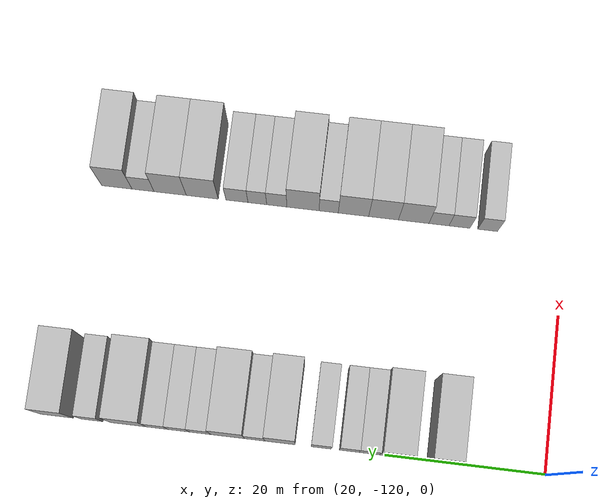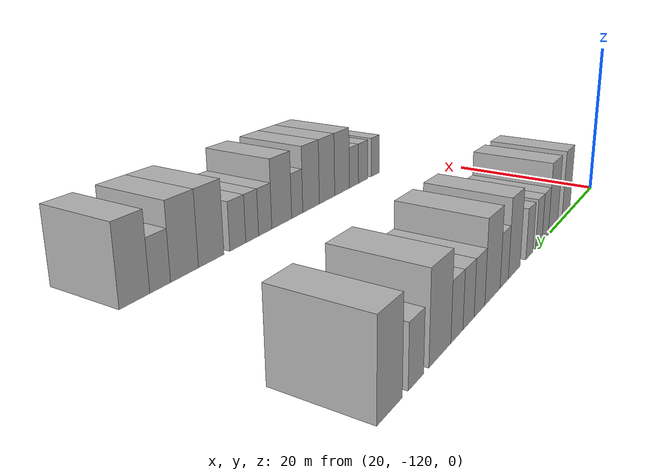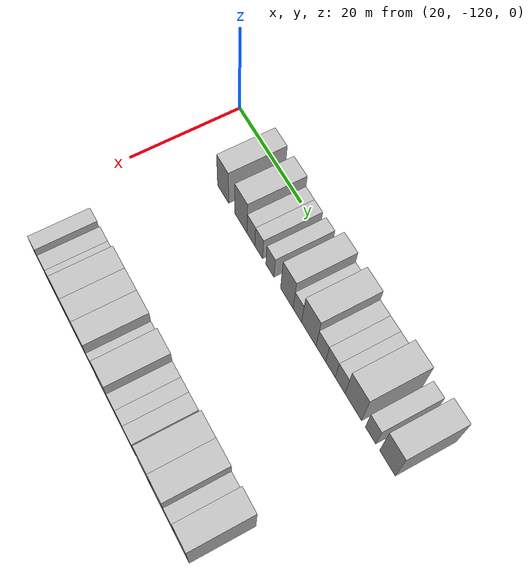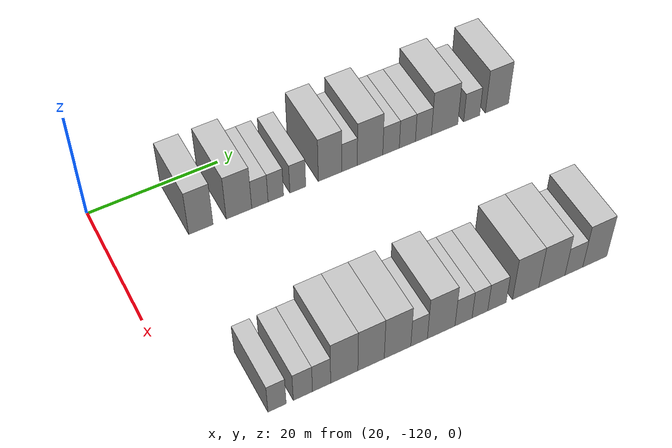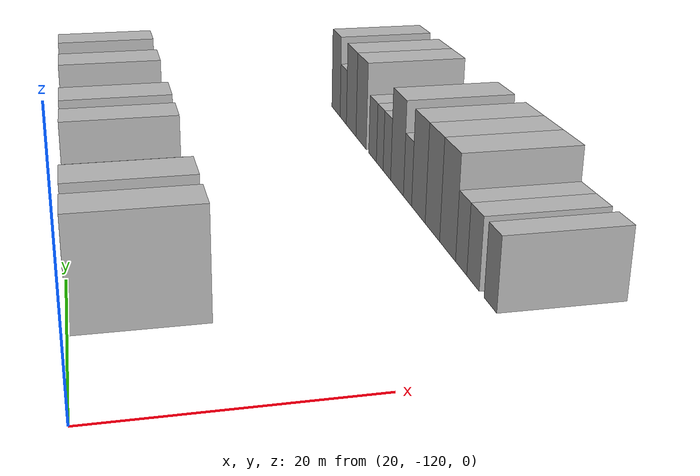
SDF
<sdf version="1.6">
 <world name="default">
  <model name="building_30">
   <static>1</static>
   <pose>25.0000 -107.0710 0 0.000000 0.000000 0.000000</pose>
   <link name="link">
    <pose>0 0 4.50 0 0 0</pose>
    <collision name="collision"><geometry><box><size>10.0000 3.6937 9.0000</size></box></geometry></collision>
    <visual name="visual">
     <cast_shadows>0</cast_shadows>
     <geometry><box><size>10.0000 3.6937 9.0000</size></box></geometry>
     <material>
      <script>
       <uri>model://HANNAS_wall/materials/scripts</uri>
       <uri>model://HANNAS_wall/materials/textures</uri>
       <name>vrc/HANNAS_wall</name>
      </script>
     </material>
    </visual>
   </link>
  </model>
  <model name="building_31">
   <static>1</static>
   <pose>25.0000 -101.2576 0 0.000000 0.000000 0.000000</pose>
   <link name="link">
    <pose>0 0 4.50 0 0 0</pose>
    <collision name="collision"><geometry><box><size>10.0000 3.9331 9.0000</size></box></geometry></collision>
    <visual name="visual">
     <cast_shadows>0</cast_shadows>
     <geometry><box><size>10.0000 3.9331 9.0000</size></box></geometry>
     <material>
      <script>
       <uri>model://HANNAS_wall/materials/scripts</uri>
       <uri>model://HANNAS_wall/materials/textures</uri>
       <name>vrc/HANNAS_wall</name>
      </script>
     </material>
    </visual>
   </link>
  </model>
  <model name="building_32">
   <static>1</static>
   <pose>25.0000 -98.0210 0 0.000000 0.000000 0.000000</pose>
   <link name="link">
    <pose>0 0 3.00 0 0 0</pose>
    <collision name="collision"><geometry><box><size>10.0000 2.5402 6.0000</size></box></geometry></collision>
    <visual name="visual">
     <cast_shadows>0</cast_shadows>
     <geometry><box><size>10.0000 2.5402 6.0000</size></box></geometry>
     <material>
      <script>
       <uri>model://HANNAS_wall/materials/scripts</uri>
       <uri>model://HANNAS_wall/materials/textures</uri>
       <name>vrc/HANNAS_wall</name>
      </script>
     </material>
    </visual>
   </link>
  </model>
  <model name="building_33">
   <static>1</static>
   <pose>25.0000 -95.5394 0 0.000000 0.000000 0.000000</pose>
   <link name="link">
    <pose>0 0 3.00 0 0 0</pose>
    <collision name="collision"><geometry><box><size>10.0000 2.4229 6.0000</size></box></geometry></collision>
    <visual name="visual">
     <cast_shadows>0</cast_shadows>
     <geometry><box><size>10.0000 2.4229 6.0000</size></box></geometry>
     <material>
      <script>
       <uri>model://HANNAS_wall/materials/scripts</uri>
       <uri>model://HANNAS_wall/materials/textures</uri>
       <name>vrc/HANNAS_wall</name>
      </script>
     </material>
    </visual>
   </link>
  </model>
  <model name="building_34">
   <static>1</static>
   <pose>25.0000 -92.0725 0 0.000000 0.000000 0.000000</pose>
   <link name="link">
    <pose>0 0 3.00 0 0 0</pose>
    <collision name="collision"><geometry><box><size>10.0000 2.5108 6.0000</size></box></geometry></collision>
    <visual name="visual">
     <cast_shadows>0</cast_shadows>
     <geometry><box><size>10.0000 2.5108 6.0000</size></box></geometry>
     <material>
      <script>
       <uri>model://HANNAS_wall/materials/scripts</uri>
       <uri>model://HANNAS_wall/materials/textures</uri>
       <name>vrc/HANNAS_wall</name>
      </script>
     </material>
    </visual>
   </link>
  </model>
  <model name="building_35">
   <static>1</static>
   <pose>25.0000 -86.9352 0 0.000000 0.000000 0.000000</pose>
   <link name="link">
    <pose>0 0 4.50 0 0 0</pose>
    <collision name="collision"><geometry><box><size>10.0000 3.7638 9.0000</size></box></geometry></collision>
    <visual name="visual">
     <cast_shadows>0</cast_shadows>
     <geometry><box><size>10.0000 3.7638 9.0000</size></box></geometry>
     <material>
      <script>
       <uri>model://HANNAS_wall/materials/scripts</uri>
       <uri>model://HANNAS_wall/materials/textures</uri>
       <name>vrc/HANNAS_wall</name>
      </script>
     </material>
    </visual>
   </link>
  </model>
  <model name="building_36">
   <static>1</static>
   <pose>25.0000 -83.7981 0 0.000000 0.000000 0.000000</pose>
   <link name="link">
    <pose>0 0 3.00 0 0 0</pose>
    <collision name="collision"><geometry><box><size>10.0000 2.5105 6.0000</size></box></geometry></collision>
    <visual name="visual">
     <cast_shadows>0</cast_shadows>
     <geometry><box><size>10.0000 2.5105 6.0000</size></box></geometry>
     <material>
      <script>
       <uri>model://HANNAS_wall/materials/scripts</uri>
       <uri>model://HANNAS_wall/materials/textures</uri>
       <name>vrc/HANNAS_wall</name>
      </script>
     </material>
    </visual>
   </link>
  </model>
  <model name="building_37">
   <static>1</static>
   <pose>25.0000 -80.4423 0 0.000000 0.000000 0.000000</pose>
   <link name="link">
    <pose>0 0 4.50 0 0 0</pose>
    <collision name="collision"><geometry><box><size>10.0000 4.2010 9.0000</size></box></geometry></collision>
    <visual name="visual">
     <cast_shadows>0</cast_shadows>
     <geometry><box><size>10.0000 4.2010 9.0000</size></box></geometry>
     <material>
      <script>
       <uri>model://HANNAS_wall/materials/scripts</uri>
       <uri>model://HANNAS_wall/materials/textures</uri>
       <name>vrc/HANNAS_wall</name>
      </script>
     </material>
    </visual>
   </link>
  </model>
  <model name="building_38">
   <static>1</static>
   <pose>25.0000 -76.9729 0 0.000000 0.000000 0.000000</pose>
   <link name="link">
    <pose>0 0 3.00 0 0 0</pose>
    <collision name="collision"><geometry><box><size>10.0000 2.7378 6.0000</size></box></geometry></collision>
    <visual name="visual">
     <cast_shadows>0</cast_shadows>
     <geometry><box><size>10.0000 2.7378 6.0000</size></box></geometry>
     <material>
      <script>
       <uri>model://HANNAS_wall/materials/scripts</uri>
       <uri>model://HANNAS_wall/materials/textures</uri>
       <name>vrc/HANNAS_wall</name>
      </script>
     </material>
    </visual>
   </link>
  </model>
  <model name="building_39">
   <static>1</static>
   <pose>25.0000 -74.2615 0 0.000000 0.000000 0.000000</pose>
   <link name="link">
    <pose>0 0 3.00 0 0 0</pose>
    <collision name="collision"><geometry><box><size>10.0000 2.6850 6.0000</size></box></geometry></collision>
    <visual name="visual">
     <cast_shadows>0</cast_shadows>
     <geometry><box><size>10.0000 2.6850 6.0000</size></box></geometry>
     <material>
      <script>
       <uri>model://HANNAS_wall/materials/scripts</uri>
       <uri>model://HANNAS_wall/materials/textures</uri>
       <name>vrc/HANNAS_wall</name>
      </script>
     </material>
    </visual>
   </link>
  </model>
  <model name="building_40">
   <static>1</static>
   <pose>25.0000 -71.5659 0 0.000000 0.000000 0.000000</pose>
   <link name="link">
    <pose>0 0 3.00 0 0 0</pose>
    <collision name="collision"><geometry><box><size>10.0000 2.7063 6.0000</size></box></geometry></collision>
    <visual name="visual">
     <cast_shadows>0</cast_shadows>
     <geometry><box><size>10.0000 2.7063 6.0000</size></box></geometry>
     <material>
      <script>
       <uri>model://HANNAS_wall/materials/scripts</uri>
       <uri>model://HANNAS_wall/materials/textures</uri>
       <name>vrc/HANNAS_wall</name>
      </script>
     </material>
    </visual>
   </link>
  </model>
  <model name="building_41">
   <static>1</static>
   <pose>25.0000 -67.9681 0 0.000000 0.000000 0.000000</pose>
   <link name="link">
    <pose>0 0 4.50 0 0 0</pose>
    <collision name="collision"><geometry><box><size>10.0000 4.4892 9.0000</size></box></geometry></collision>
    <visual name="visual">
     <cast_shadows>0</cast_shadows>
     <geometry><box><size>10.0000 4.4892 9.0000</size></box></geometry>
     <material>
      <script>
       <uri>model://HANNAS_wall/materials/scripts</uri>
       <uri>model://HANNAS_wall/materials/textures</uri>
       <name>vrc/HANNAS_wall</name>
      </script>
     </material>
    </visual>
   </link>
  </model>
  <model name="building_42">
   <static>1</static>
   <pose>25.0000 -63.3430 0 0.000000 0.000000 0.000000</pose>
   <link name="link">
    <pose>0 0 3.00 0 0 0</pose>
    <collision name="collision"><geometry><box><size>10.0000 2.7610 6.0000</size></box></geometry></collision>
    <visual name="visual">
     <cast_shadows>0</cast_shadows>
     <geometry><box><size>10.0000 2.7610 6.0000</size></box></geometry>
     <material>
      <script>
       <uri>model://HANNAS_wall/materials/scripts</uri>
       <uri>model://HANNAS_wall/materials/textures</uri>
       <name>vrc/HANNAS_wall</name>
      </script>
     </material>
    </visual>
   </link>
  </model>
  <model name="building_43">
   <static>1</static>
   <pose>25.0000 -58.9447 0 0.000000 0.000000 0.000000</pose>
   <link name="link">
    <pose>0 0 4.50 0 0 0</pose>
    <collision name="collision"><geometry><box><size>10.0000 4.0356 9.0000</size></box></geometry></collision>
    <visual name="visual">
     <cast_shadows>0</cast_shadows>
     <geometry><box><size>10.0000 4.0356 9.0000</size></box></geometry>
     <material>
      <script>
       <uri>model://HANNAS_wall/materials/scripts</uri>
       <uri>model://HANNAS_wall/materials/textures</uri>
       <name>vrc/HANNAS_wall</name>
      </script>
     </material>
    </visual>
   </link>
  </model>
  <model name="building_145">
   <static>1</static>
   <pose>55.0000 -110.0543 0 0.000000 0.000000 0.000000</pose>
   <link name="link">
    <pose>0 0 3.00 0 0 0</pose>
    <collision name="collision"><geometry><box><size>10.0000 2.5459 6.0000</size></box></geometry></collision>
    <visual name="visual">
     <cast_shadows>0</cast_shadows>
     <geometry><box><size>10.0000 2.5459 6.0000</size></box></geometry>
     <material>
      <script>
       <uri>model://HANNAS_wall/materials/scripts</uri>
       <uri>model://HANNAS_wall/materials/textures</uri>
       <name>vrc/HANNAS_wall</name>
      </script>
     </material>
    </visual>
   </link>
  </model>
  <model name="building_146">
   <static>1</static>
   <pose>55.0000 -106.4268 0 0.000000 0.000000 0.000000</pose>
   <link name="link">
    <pose>0 0 3.00 0 0 0</pose>
    <collision name="collision"><geometry><box><size>10.0000 2.7090 6.0000</size></box></geometry></collision>
    <visual name="visual">
     <cast_shadows>0</cast_shadows>
     <geometry><box><size>10.0000 2.7090 6.0000</size></box></geometry>
     <material>
      <script>
       <uri>model://HANNAS_wall/materials/scripts</uri>
       <uri>model://HANNAS_wall/materials/textures</uri>
       <name>vrc/HANNAS_wall</name>
      </script>
     </material>
    </visual>
   </link>
  </model>
  <model name="building_147">
   <static>1</static>
   <pose>55.0000 -103.7777 0 0.000000 0.000000 0.000000</pose>
   <link name="link">
    <pose>0 0 3.00 0 0 0</pose>
    <collision name="collision"><geometry><box><size>10.0000 2.5892 6.0000</size></box></geometry></collision>
    <visual name="visual">
     <cast_shadows>0</cast_shadows>
     <geometry><box><size>10.0000 2.5892 6.0000</size></box></geometry>
     <material>
      <script>
       <uri>model://HANNAS_wall/materials/scripts</uri>
       <uri>model://HANNAS_wall/materials/textures</uri>
       <name>vrc/HANNAS_wall</name>
      </script>
     </material>
    </visual>
   </link>
  </model>
  <model name="building_148">
   <static>1</static>
   <pose>55.0000 -100.5180 0 0.000000 0.000000 0.000000</pose>
   <link name="link">
    <pose>0 0 4.50 0 0 0</pose>
    <collision name="collision"><geometry><box><size>10.0000 3.9303 9.0000</size></box></geometry></collision>
    <visual name="visual">
     <cast_shadows>0</cast_shadows>
     <geometry><box><size>10.0000 3.9303 9.0000</size></box></geometry>
     <material>
      <script>
       <uri>model://HANNAS_wall/materials/scripts</uri>
       <uri>model://HANNAS_wall/materials/textures</uri>
       <name>vrc/HANNAS_wall</name>
      </script>
     </material>
    </visual>
   </link>
  </model>
  <model name="building_149">
   <static>1</static>
   <pose>55.0000 -96.6294 0 0.000000 0.000000 0.000000</pose>
   <link name="link">
    <pose>0 0 4.50 0 0 0</pose>
    <collision name="collision"><geometry><box><size>10.0000 3.8467 9.0000</size></box></geometry></collision>
    <visual name="visual">
     <cast_shadows>0</cast_shadows>
     <geometry><box><size>10.0000 3.8467 9.0000</size></box></geometry>
     <material>
      <script>
       <uri>model://HANNAS_wall/materials/scripts</uri>
       <uri>model://HANNAS_wall/materials/textures</uri>
       <name>vrc/HANNAS_wall</name>
      </script>
     </material>
    </visual>
   </link>
  </model>
  <model name="building_150">
   <static>1</static>
   <pose>55.0000 -92.7429 0 0.000000 0.000000 0.000000</pose>
   <link name="link">
    <pose>0 0 4.50 0 0 0</pose>
    <collision name="collision"><geometry><box><size>10.0000 3.9264 9.0000</size></box></geometry></collision>
    <visual name="visual">
     <cast_shadows>0</cast_shadows>
     <geometry><box><size>10.0000 3.9264 9.0000</size></box></geometry>
     <material>
      <script>
       <uri>model://HANNAS_wall/materials/scripts</uri>
       <uri>model://HANNAS_wall/materials/textures</uri>
       <name>vrc/HANNAS_wall</name>
      </script>
     </material>
    </visual>
   </link>
  </model>
  <model name="building_151">
   <static>1</static>
   <pose>55.0000 -89.5380 0 0.000000 0.000000 0.000000</pose>
   <link name="link">
    <pose>0 0 3.00 0 0 0</pose>
    <collision name="collision"><geometry><box><size>10.0000 2.4833 6.0000</size></box></geometry></collision>
    <visual name="visual">
     <cast_shadows>0</cast_shadows>
     <geometry><box><size>10.0000 2.4833 6.0000</size></box></geometry>
     <material>
      <script>
       <uri>model://HANNAS_wall/materials/scripts</uri>
       <uri>model://HANNAS_wall/materials/textures</uri>
       <name>vrc/HANNAS_wall</name>
      </script>
     </material>
    </visual>
   </link>
  </model>
  <model name="building_152">
   <static>1</static>
   <pose>55.0000 -86.2099 0 0.000000 0.000000 0.000000</pose>
   <link name="link">
    <pose>0 0 4.50 0 0 0</pose>
    <collision name="collision"><geometry><box><size>10.0000 4.1730 9.0000</size></box></geometry></collision>
    <visual name="visual">
     <cast_shadows>0</cast_shadows>
     <geometry><box><size>10.0000 4.1730 9.0000</size></box></geometry>
     <material>
      <script>
       <uri>model://HANNAS_wall/materials/scripts</uri>
       <uri>model://HANNAS_wall/materials/textures</uri>
       <name>vrc/HANNAS_wall</name>
      </script>
     </material>
    </visual>
   </link>
  </model>
  <model name="building_153">
   <static>1</static>
   <pose>55.0000 -82.8176 0 0.000000 0.000000 0.000000</pose>
   <link name="link">
    <pose>0 0 3.00 0 0 0</pose>
    <collision name="collision"><geometry><box><size>10.0000 2.6115 6.0000</size></box></geometry></collision>
    <visual name="visual">
     <cast_shadows>0</cast_shadows>
     <geometry><box><size>10.0000 2.6115 6.0000</size></box></geometry>
     <material>
      <script>
       <uri>model://HANNAS_wall/materials/scripts</uri>
       <uri>model://HANNAS_wall/materials/textures</uri>
       <name>vrc/HANNAS_wall</name>
      </script>
     </material>
    </visual>
   </link>
  </model>
  <model name="building_154">
   <static>1</static>
   <pose>55.0000 -80.3013 0 0.000000 0.000000 0.000000</pose>
   <link name="link">
    <pose>0 0 3.00 0 0 0</pose>
    <collision name="collision"><geometry><box><size>10.0000 2.4211 6.0000</size></box></geometry></collision>
    <visual name="visual">
     <cast_shadows>0</cast_shadows>
     <geometry><box><size>10.0000 2.4211 6.0000</size></box></geometry>
     <material>
      <script>
       <uri>model://HANNAS_wall/materials/scripts</uri>
       <uri>model://HANNAS_wall/materials/textures</uri>
       <name>vrc/HANNAS_wall</name>
      </script>
     </material>
    </visual>
   </link>
  </model>
  <model name="building_155">
   <static>1</static>
   <pose>55.0000 -77.6585 0 0.000000 0.000000 0.000000</pose>
   <link name="link">
    <pose>0 0 3.00 0 0 0</pose>
    <collision name="collision"><geometry><box><size>10.0000 2.8646 6.0000</size></box></geometry></collision>
    <visual name="visual">
     <cast_shadows>0</cast_shadows>
     <geometry><box><size>10.0000 2.8646 6.0000</size></box></geometry>
     <material>
      <script>
       <uri>model://HANNAS_wall/materials/scripts</uri>
       <uri>model://HANNAS_wall/materials/textures</uri>
       <name>vrc/HANNAS_wall</name>
      </script>
     </material>
    </visual>
   </link>
  </model>
  <model name="building_156">
   <static>1</static>
   <pose>55.0000 -73.1479 0 0.000000 0.000000 0.000000</pose>
   <link name="link">
    <pose>0 0 4.50 0 0 0</pose>
    <collision name="collision"><geometry><box><size>10.0000 4.1566 9.0000</size></box></geometry></collision>
    <visual name="visual">
     <cast_shadows>0</cast_shadows>
     <geometry><box><size>10.0000 4.1566 9.0000</size></box></geometry>
     <material>
      <script>
       <uri>model://HANNAS_wall/materials/scripts</uri>
       <uri>model://HANNAS_wall/materials/textures</uri>
       <name>vrc/HANNAS_wall</name>
      </script>
     </material>
    </visual>
   </link>
  </model>
  <model name="building_157">
   <static>1</static>
   <pose>55.0000 -68.9772 0 0.000000 0.000000 0.000000</pose>
   <link name="link">
    <pose>0 0 4.50 0 0 0</pose>
    <collision name="collision"><geometry><box><size>10.0000 4.1848 9.0000</size></box></geometry></collision>
    <visual name="visual">
     <cast_shadows>0</cast_shadows>
     <geometry><box><size>10.0000 4.1848 9.0000</size></box></geometry>
     <material>
      <script>
       <uri>model://HANNAS_wall/materials/scripts</uri>
       <uri>model://HANNAS_wall/materials/textures</uri>
       <name>vrc/HANNAS_wall</name>
      </script>
     </material>
    </visual>
   </link>
  </model>
  <model name="building_158">
   <static>1</static>
   <pose>55.0000 -65.4466 0 0.000000 0.000000 0.000000</pose>
   <link name="link">
    <pose>0 0 3.00 0 0 0</pose>
    <collision name="collision"><geometry><box><size>10.0000 2.8765 6.0000</size></box></geometry></collision>
    <visual name="visual">
     <cast_shadows>0</cast_shadows>
     <geometry><box><size>10.0000 2.8765 6.0000</size></box></geometry>
     <material>
      <script>
       <uri>model://HANNAS_wall/materials/scripts</uri>
       <uri>model://HANNAS_wall/materials/textures</uri>
       <name>vrc/HANNAS_wall</name>
      </script>
     </material>
    </visual>
   </link>
  </model>
  <model name="building_159">
   <static>1</static>
   <pose>55.0000 -62.0311 0 0.000000 0.000000 0.000000</pose>
   <link name="link">
    <pose>0 0 4.50 0 0 0</pose>
    <collision name="collision"><geometry><box><size>10.0000 3.9545 9.0000</size></box></geometry></collision>
    <visual name="visual">
     <cast_shadows>0</cast_shadows>
     <geometry><box><size>10.0000 3.9545 9.0000</size></box></geometry>
     <material>
      <script>
       <uri>model://HANNAS_wall/materials/scripts</uri>
       <uri>model://HANNAS_wall/materials/textures</uri>
       <name>vrc/HANNAS_wall</name>
      </script>
     </material>
    </visual>
   </link>
  </model>
 </world>
</sdf>
